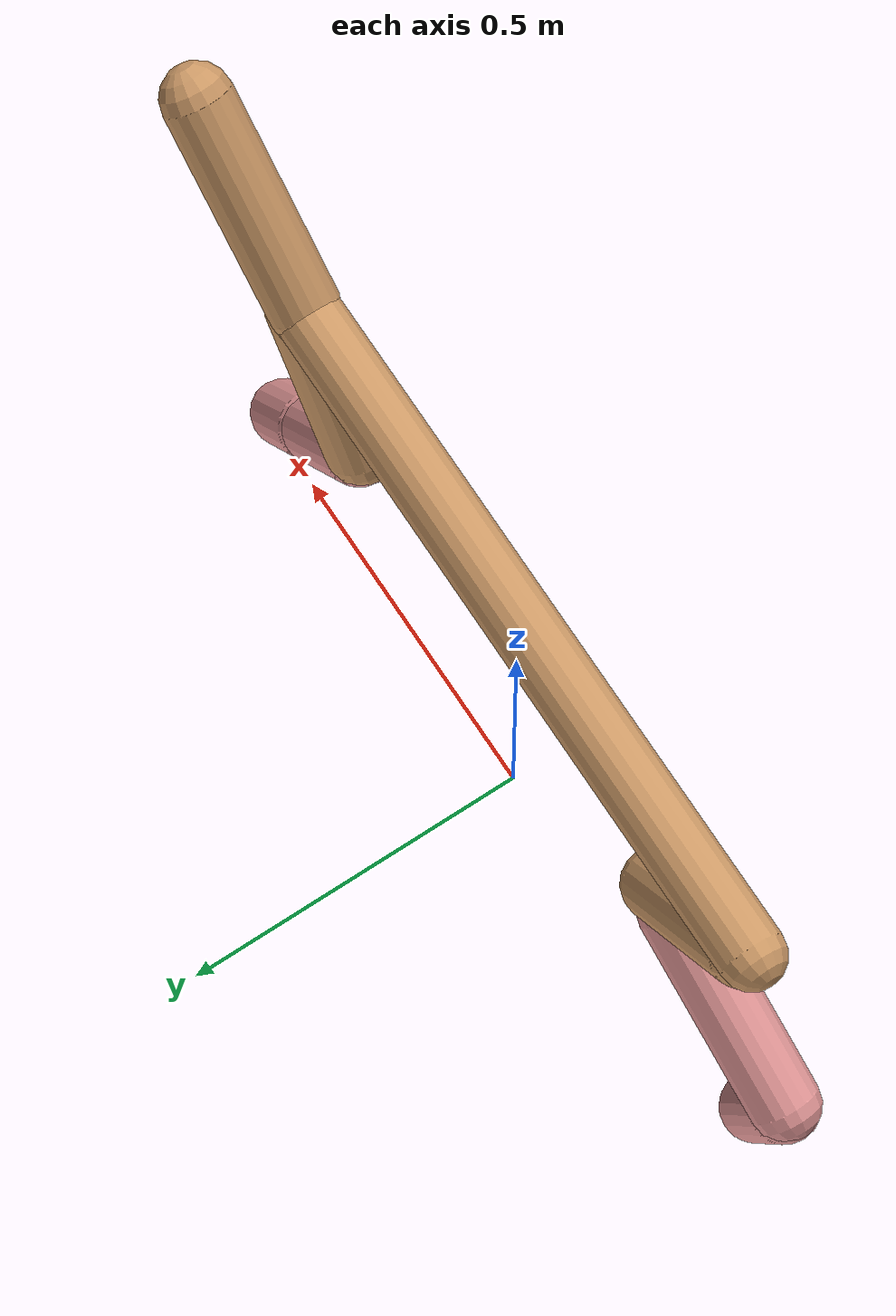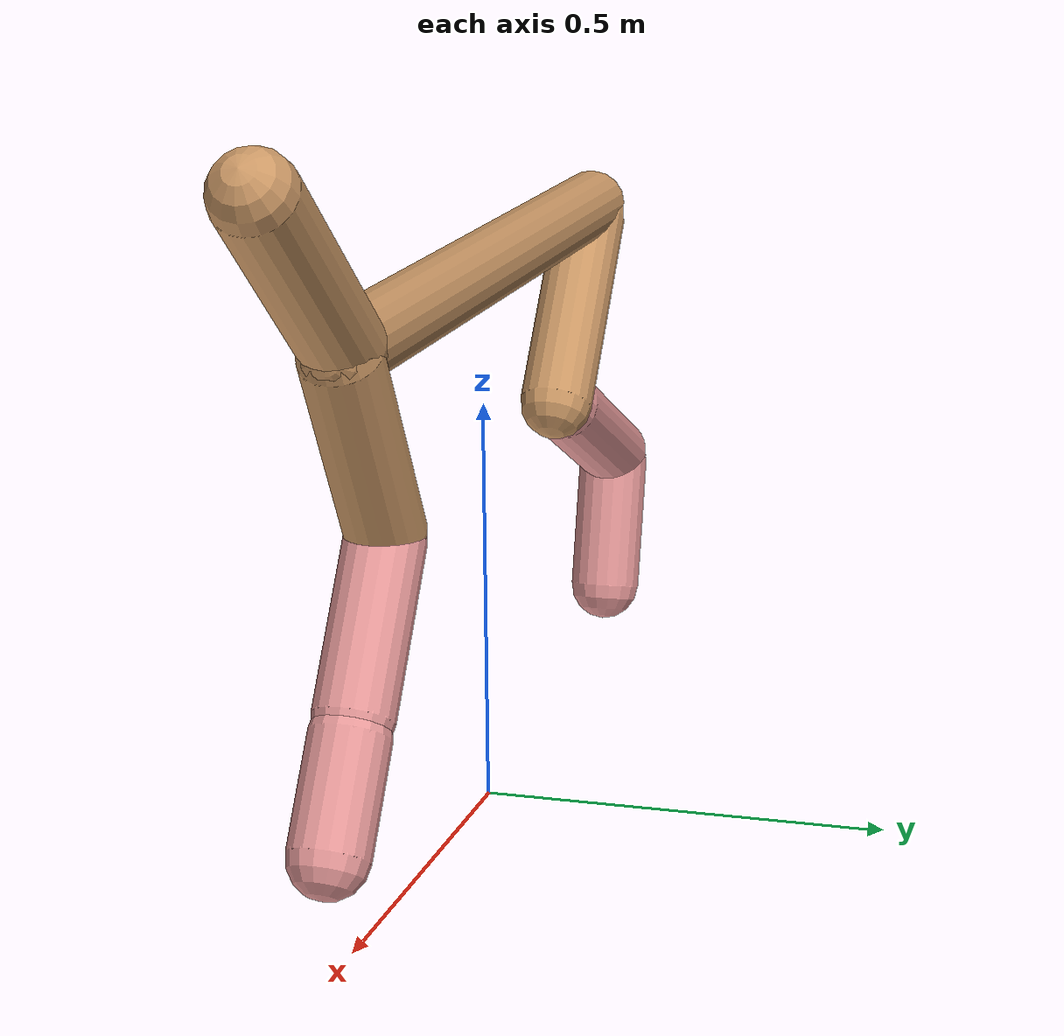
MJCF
<mujoco model="cheetah">
  <compiler angle="radian" coordinate="local" inertiafromgeom="true" settotalmass="14" />
  <default>
    <joint armature=".1" damping=".01" limited="true" solimplimit="0 .8 .03" solreflimit=".02 1" stiffness="8" />
    <geom conaffinity="0" condim="3" contype="1" friction="0.8 .1 .1" rgba="0.8 0.6 .4 1" solimp="0.0 0.8 0.01" solref="0.02 1" />
    <motor ctrllimited="true" ctrlrange="-1 1" />
  </default>
  <size nstack="300000" nuser_geom="1" />
  <option gravity="0 0 -9.81" timestep="0.01" />
  <worldbody>
    <body name="torso" pos="0.0 0.0 0.6656107786324962">
      <joint armature="0" axis="1 0 0" damping="0" limited="false" name="ignorex" pos="0 0 0" stiffness="0" type="slide" />
      <joint armature="0" axis="0 0 1" damping="0" limited="false" name="ignorez" pos="0 0 0" stiffness="0" type="slide" />
      <joint armature="0" axis="0 1 0" damping="0" limited="false" name="ignorey" pos="0 0 0" stiffness="0" type="hinge" />
      <geom fromto="-0.5 0.0 0.0 0.49166577018877516 0.0 0.0" name="torso" size="0.04403563111702052" type="capsule" />
      <geom axisangle="0 1 0 .87" name="head" pos="0.5916657701887752 0.0 0.1" size="0.04692087183282721 0.15" type="capsule" />

      <body name="bthigh" pos="-.5 0 0">
        <joint axis="0 1 0" damping="6" name="bthigh" pos="0 0 0" range="-.52 1.05" stiffness="240" type="hinge" />
        <geom axisangle="0 1 0 -3.8" name="bthigh" pos="0.09690183749081806 0.0 -0.12597238873806346" size="0.047208756480335665 0.1399186356742919" type="capsule" />
        <body name="bshin" pos="0.1538036749816361 0.0 -0.24194477747612692">
          <joint axis="0 1 0" damping="4.5" name="bshin" pos="0 0 0" range="-.785 .785" stiffness="180" type="hinge" />
          <geom axisangle="0 1 0 -2.03" name="bshin" pos="-0.13529836853073424 0.0 -0.06764918426536712" rgba="0.9 0.6 0.6 1" size="0.047208756480335665 0.14474341621478476" type="capsule" />
          <body name="bfoot" pos="-0.2705967370614685 0.0 -0.13529836853073424">
            <joint axis="0 1 0" damping="3" name="bfoot" pos="0 0 0" range="-.4 .785" stiffness="120" type="hinge" />
            <geom axisangle="0 1 0 -.27" name="bfoot" pos="0.029026685551158577 0.0 -0.09385294994874607" rgba="0.9 0.6 0.6 1" size="0.047208756480335665 0.09070587416126512" type="capsule" />
            <inertial mass="10" />
          </body>
        </body>
      </body>
      <body name="fthigh" pos="0.4916657701887752 0.0 0.0">
        <joint axis="0 1 0" damping="4.5" name="fthigh" pos="0 0 0" range="-1.5 0.8" stiffness="180" type="hinge" />
        <geom axisangle="0 1 0 .52" name="fthigh" pos="-0.06758934269081933 0.0 -0.11586744461283313" size="0.04630331393114445 0.12821572547920712" type="capsule" />
        <body name="fshin" pos="-0.13517868538163866 0.0 -0.23173488922566626">
          <joint axis="0 1 0" damping="3" name="fshin" pos="0 0 0" range="-1.2 1.1" stiffness="120" type="hinge" />
          <geom axisangle="0 1 0 -.6" name="fshin" pos="0.06276750647273847 0.0 -0.08690885511609941" rgba="0.9 0.6 0.6 1" size="0.04630331393114445 0.10218696917891694" type="capsule" />
          <body name="ffoot" pos="0.12553501294547695 0.0 -0.17381771023219883">
            <joint axis="0 1 0" damping="1.5" name="ffoot" pos="0 0 0" range="-3.1 -0.3" stiffness="60" type="hinge" />
            <geom axisangle="0 1 0 -.6" name="ffoot" pos="0.04363835117576499 0.0 -0.06788187960674555" rgba="0.9 0.6 0.6 1" size="0.04630331393114445 0.06748196077853007" type="capsule" />
            <inertial mass="10" />
          </body>
        </body>
      </body>
    </body>
  </worldbody>
  <actuator>
    <motor gear="120" joint="bthigh" name="bthigh" />
    <motor gear="90" joint="bshin" name="bshin" />
    <motor gear="60" joint="bfoot" name="bfoot" />
    <motor gear="120" joint="fthigh" name="fthigh" />
    <motor gear="60" joint="fshin" name="fshin" />
    <motor gear="30" joint="ffoot" name="ffoot" />
  </actuator>
</mujoco>
